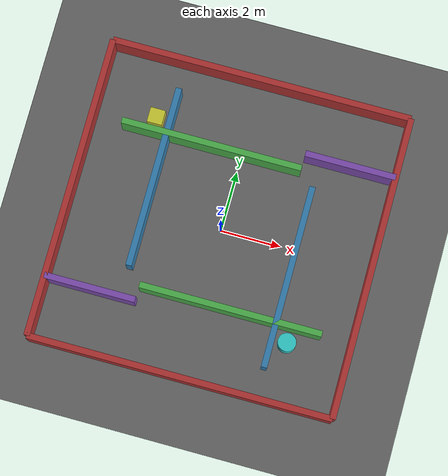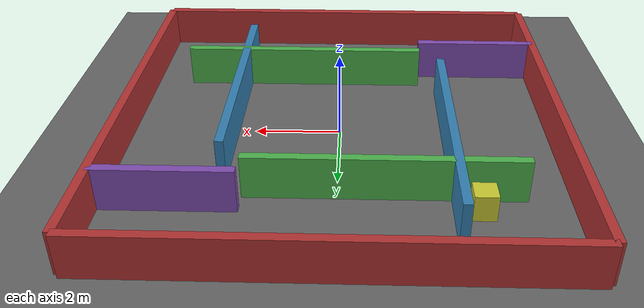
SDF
<?xml version="1.0" ?>
<sdf version="1.8">
  <world name="spooder_world">
    <physics name="1ms" type="ignored">
      <max_step_size>0.001</max_step_size>
      <real_time_factor>1.0</real_time_factor>
    </physics>
    <plugin
      filename="libgz-sim-physics-system.so"
      name="gz::sim::systems::Physics">
    </plugin>
    <plugin
      filename="gz-sim-sensors-system"
      name="gz::sim::systems::Sensors">
      <render_engine>ogre2</render_engine>
    </plugin>
    <plugin
      filename="gz-sim-user-commands-system"
      name="gz::sim::systems::UserCommands">
    </plugin>
    <plugin
      filename="libgz-sim-scene-broadcaster-system.so"
      name="gz::sim::systems::SceneBroadcaster">
    </plugin>

    <light type="directional" name="sun">
      <cast_shadows>true</cast_shadows>
      <pose>0 0 10 0 0 0</pose>
      <diffuse>0.8 0.8 0.8 1</diffuse>
      <specular>0.2 0.2 0.2 1</specular>
      <attenuation>
        <range>1000</range>
        <constant>0.9</constant>
        <linear>0.01</linear>
        <quadratic>0.001</quadratic>
      </attenuation>
      <direction>-0.5 0.1 -0.9</direction>
    </light>

    <!-- Ground Plane -->
    <model name="ground_plane">
      <static>true</static>
      <link name="link">
        <collision name="collision">
          <geometry>
            <plane>
              <normal>0 0 1</normal>
              <size>20 20</size>
            </plane>
          </geometry>
        </collision>
        <visual name="visual">
          <geometry>
            <plane>
              <normal>0 0 1</normal>
              <size>20 20</size>
            </plane>
          </geometry>
          <material>
            <ambient>0.4 0.4 0.4 1</ambient>
            <diffuse>0.4 0.4 0.4 1</diffuse>
          </material>
        </visual>
      </link>
    </model>

    <!-- Maze Walls - Creating a 10x10m maze with multiple rooms -->

    <!-- Outer boundary walls -->
    <model name="wall_north">
      <pose>0 5 0.5 0 0 0</pose>
      <static>true</static>
      <link name="link">
        <collision name="collision">
          <geometry><box><size>10 0.2 1</size></box></geometry>
        </collision>
        <visual name="visual">
          <geometry><box><size>10 0.2 1</size></box></geometry>
          <material><ambient>0.7 0.2 0.2 1</ambient><diffuse>0.7 0.2 0.2 1</diffuse></material>
        </visual>
      </link>
    </model>

    <model name="wall_south">
      <pose>0 -5 0.5 0 0 0</pose>
      <static>true</static>
      <link name="link">
        <collision name="collision">
          <geometry><box><size>10 0.2 1</size></box></geometry>
        </collision>
        <visual name="visual">
          <geometry><box><size>10 0.2 1</size></box></geometry>
          <material><ambient>0.7 0.2 0.2 1</ambient><diffuse>0.7 0.2 0.2 1</diffuse></material>
        </visual>
      </link>
    </model>

    <model name="wall_east">
      <pose>5 0 0.5 0 0 0</pose>
      <static>true</static>
      <link name="link">
        <collision name="collision">
          <geometry><box><size>0.2 10 1</size></box></geometry>
        </collision>
        <visual name="visual">
          <geometry><box><size>0.2 10 1</size></box></geometry>
          <material><ambient>0.7 0.2 0.2 1</ambient><diffuse>0.7 0.2 0.2 1</diffuse></material>
        </visual>
      </link>
    </model>

    <model name="wall_west">
      <pose>-5 0 0.5 0 0 0</pose>
      <static>true</static>
      <link name="link">
        <collision name="collision">
          <geometry><box><size>0.2 10 1</size></box></geometry>
        </collision>
        <visual name="visual">
          <geometry><box><size>0.2 10 1</size></box></geometry>
          <material><ambient>0.7 0.2 0.2 1</ambient><diffuse>0.7 0.2 0.2 1</diffuse></material>
        </visual>
      </link>
    </model>

    <!-- Internal maze walls creating rooms and corridors -->

    <!-- Vertical divider 1 -->
    <model name="wall_v1">
      <pose>-2.5 1 0.5 0 0 0</pose>
      <static>true</static>
      <link name="link">
        <collision name="collision">
          <geometry><box><size>0.2 6 1</size></box></geometry>
        </collision>
        <visual name="visual">
          <geometry><box><size>0.2 6 1</size></box></geometry>
          <material><ambient>0.2 0.5 0.7 1</ambient><diffuse>0.2 0.5 0.7 1</diffuse></material>
        </visual>
      </link>
    </model>

    <!-- Vertical divider 2 -->
    <model name="wall_v2">
      <pose>2.5 -1 0.5 0 0 0</pose>
      <static>true</static>
      <link name="link">
        <collision name="collision">
          <geometry><box><size>0.2 6 1</size></box></geometry>
        </collision>
        <visual name="visual">
          <geometry><box><size>0.2 6 1</size></box></geometry>
          <material><ambient>0.2 0.5 0.7 1</ambient><diffuse>0.2 0.5 0.7 1</diffuse></material>
        </visual>
      </link>
    </model>

    <!-- Horizontal divider 1 -->
    <model name="wall_h1">
      <pose>-1 2.5 0.5 0 0 0</pose>
      <static>true</static>
      <link name="link">
        <collision name="collision">
          <geometry><box><size>6 0.2 1</size></box></geometry>
        </collision>
        <visual name="visual">
          <geometry><box><size>6 0.2 1</size></box></geometry>
          <material><ambient>0.3 0.7 0.3 1</ambient><diffuse>0.3 0.7 0.3 1</diffuse></material>
        </visual>
      </link>
    </model>

    <!-- Horizontal divider 2 -->
    <model name="wall_h2">
      <pose>1 -2.5 0.5 0 0 0</pose>
      <static>true</static>
      <link name="link">
        <collision name="collision">
          <geometry><box><size>6 0.2 1</size></box></geometry>
        </collision>
        <visual name="visual">
          <geometry><box><size>6 0.2 1</size></box></geometry>
          <material><ambient>0.3 0.7 0.3 1</ambient><diffuse>0.3 0.7 0.3 1</diffuse></material>
        </visual>
      </link>
    </model>

    <!-- Additional corridor walls -->
    <model name="wall_corridor1">
      <pose>-3.5 -3 0.5 0 0 0</pose>
      <static>true</static>
      <link name="link">
        <collision name="collision">
          <geometry><box><size>3 0.2 1</size></box></geometry>
        </collision>
        <visual name="visual">
          <geometry><box><size>3 0.2 1</size></box></geometry>
          <material><ambient>0.5 0.3 0.7 1</ambient><diffuse>0.5 0.3 0.7 1</diffuse></material>
        </visual>
      </link>
    </model>

    <model name="wall_corridor2">
      <pose>3.5 3 0.5 0 0 0</pose>
      <static>true</static>
      <link name="link">
        <collision name="collision">
          <geometry><box><size>3 0.2 1</size></box></geometry>
        </collision>
        <visual name="visual">
          <geometry><box><size>3 0.2 1</size></box></geometry>
          <material><ambient>0.5 0.3 0.7 1</ambient><diffuse>0.5 0.3 0.7 1</diffuse></material>
        </visual>
      </link>
    </model>

    <!-- Small obstacles for variety -->
    <model name="obstacle1">
      <pose>-3 3 0.3 0 0 0</pose>
      <static>true</static>
      <link name="link">
        <collision name="collision">
          <geometry><box><size>0.5 0.5 0.6</size></box></geometry>
        </collision>
        <visual name="visual">
          <geometry><box><size>0.5 0.5 0.6</size></box></geometry>
          <material><ambient>0.8 0.8 0.2 1</ambient><diffuse>0.8 0.8 0.2 1</diffuse></material>
        </visual>
      </link>
    </model>

    <model name="obstacle2">
      <pose>3 -3 0.3 0 0 0</pose>
      <static>true</static>
      <link name="link">
        <collision name="collision">
          <geometry><cylinder><radius>0.3</radius><length>0.6</length></cylinder></geometry>
        </collision>
        <visual name="visual">
          <geometry><cylinder><radius>0.3</radius><length>0.6</length></cylinder></geometry>
          <material><ambient>0.2 0.8 0.8 1</ambient><diffuse>0.2 0.8 0.8 1</diffuse></material>
        </visual>
      </link>
    </model>

  </world>
</sdf>
